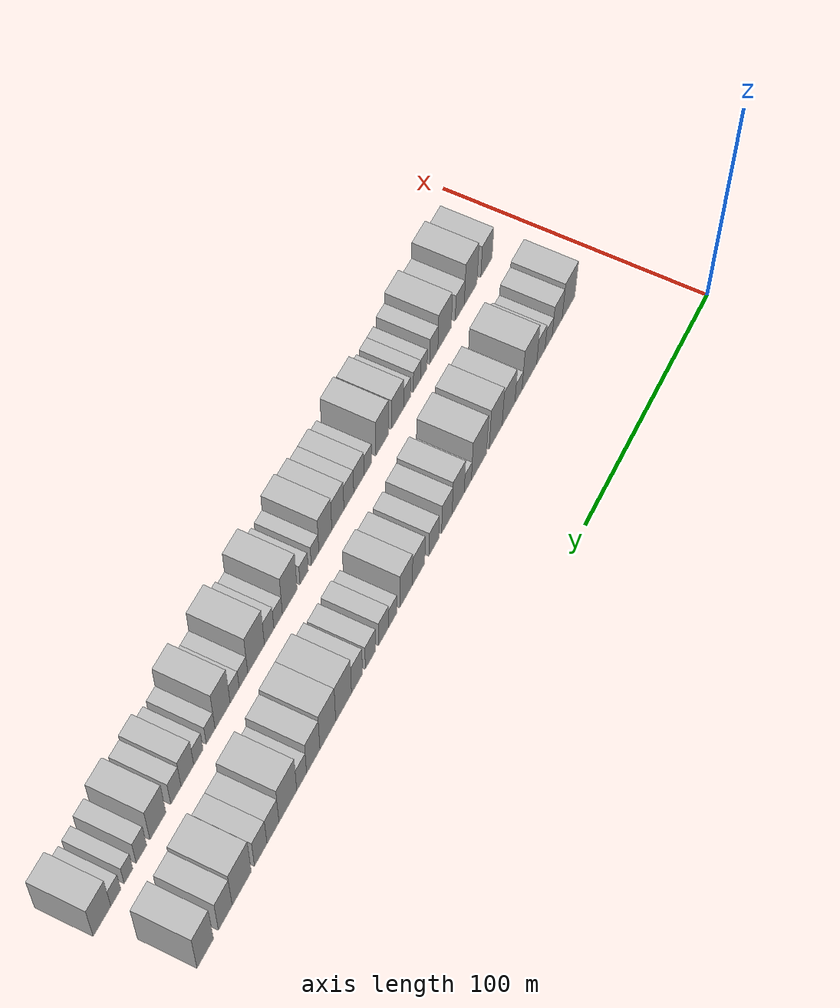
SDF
<sdf version="1.6">
 <world name="default">
  <model name="building_29">
   <static>1</static>
   <pose>50.0000 26.0660 0 0.000000 0.000000 0.000000</pose>
   <link name="link">
    <pose>0 0 10.50 0 0 0</pose>
    <collision name="collision"><geometry><box><size>20.0000 10.3743 21.0000</size></box></geometry></collision>
    <visual name="visual">
     <cast_shadows>0</cast_shadows>
     <geometry><box><size>20.0000 10.3743 21.0000</size></box></geometry>
     <material>
      <script>
       <uri>model://HANNAS_wall/materials/scripts</uri>
       <uri>model://HANNAS_wall/materials/textures</uri>
       <name>vrc/HANNAS_wall</name>
      </script>
     </material>
    </visual>
   </link>
  </model>
  <model name="building_30">
   <static>1</static>
   <pose>50.0000 35.2539 0 0.000000 0.000000 0.000000</pose>
   <link name="link">
    <pose>0 0 9.00 0 0 0</pose>
    <collision name="collision"><geometry><box><size>20.0000 8.0016 18.0000</size></box></geometry></collision>
    <visual name="visual">
     <cast_shadows>0</cast_shadows>
     <geometry><box><size>20.0000 8.0016 18.0000</size></box></geometry>
     <material>
      <script>
       <uri>model://HANNAS_wall/materials/scripts</uri>
       <uri>model://HANNAS_wall/materials/textures</uri>
       <name>vrc/HANNAS_wall</name>
      </script>
     </material>
    </visual>
   </link>
  </model>
  <model name="building_31">
   <static>1</static>
   <pose>50.0000 42.0999 0 0.000000 0.000000 0.000000</pose>
   <link name="link">
    <pose>0 0 6.00 0 0 0</pose>
    <collision name="collision"><geometry><box><size>20.0000 5.6902 12.0000</size></box></geometry></collision>
    <visual name="visual">
     <cast_shadows>0</cast_shadows>
     <geometry><box><size>20.0000 5.6902 12.0000</size></box></geometry>
     <material>
      <script>
       <uri>model://HANNAS_wall/materials/scripts</uri>
       <uri>model://HANNAS_wall/materials/textures</uri>
       <name>vrc/HANNAS_wall</name>
      </script>
     </material>
    </visual>
   </link>
  </model>
  <model name="building_32">
   <static>1</static>
   <pose>50.0000 48.2568 0 0.000000 0.000000 0.000000</pose>
   <link name="link">
    <pose>0 0 7.50 0 0 0</pose>
    <collision name="collision"><geometry><box><size>20.0000 6.6237 15.0000</size></box></geometry></collision>
    <visual name="visual">
     <cast_shadows>0</cast_shadows>
     <geometry><box><size>20.0000 6.6237 15.0000</size></box></geometry>
     <material>
      <script>
       <uri>model://HANNAS_wall/materials/scripts</uri>
       <uri>model://HANNAS_wall/materials/textures</uri>
       <name>vrc/HANNAS_wall</name>
      </script>
     </material>
    </visual>
   </link>
  </model>
  <model name="building_33">
   <static>1</static>
   <pose>50.0000 57.3167 0 0.000000 0.000000 0.000000</pose>
   <link name="link">
    <pose>0 0 12.00 0 0 0</pose>
    <collision name="collision"><geometry><box><size>20.0000 11.4961 24.0000</size></box></geometry></collision>
    <visual name="visual">
     <cast_shadows>0</cast_shadows>
     <geometry><box><size>20.0000 11.4961 24.0000</size></box></geometry>
     <material>
      <script>
       <uri>model://HANNAS_wall/materials/scripts</uri>
       <uri>model://HANNAS_wall/materials/textures</uri>
       <name>vrc/HANNAS_wall</name>
      </script>
     </material>
    </visual>
   </link>
  </model>
  <model name="building_34">
   <static>1</static>
   <pose>50.0000 65.8252 0 0.000000 0.000000 0.000000</pose>
   <link name="link">
    <pose>0 0 6.00 0 0 0</pose>
    <collision name="collision"><geometry><box><size>20.0000 5.5210 12.0000</size></box></geometry></collision>
    <visual name="visual">
     <cast_shadows>0</cast_shadows>
     <geometry><box><size>20.0000 5.5210 12.0000</size></box></geometry>
     <material>
      <script>
       <uri>model://HANNAS_wall/materials/scripts</uri>
       <uri>model://HANNAS_wall/materials/textures</uri>
       <name>vrc/HANNAS_wall</name>
      </script>
     </material>
    </visual>
   </link>
  </model>
  <model name="building_35">
   <static>1</static>
   <pose>50.0000 73.5058 0 0.000000 0.000000 0.000000</pose>
   <link name="link">
    <pose>0 0 10.50 0 0 0</pose>
    <collision name="collision"><geometry><box><size>20.0000 9.8404 21.0000</size></box></geometry></collision>
    <visual name="visual">
     <cast_shadows>0</cast_shadows>
     <geometry><box><size>20.0000 9.8404 21.0000</size></box></geometry>
     <material>
      <script>
       <uri>model://HANNAS_wall/materials/scripts</uri>
       <uri>model://HANNAS_wall/materials/textures</uri>
       <name>vrc/HANNAS_wall</name>
      </script>
     </material>
    </visual>
   </link>
  </model>
  <model name="building_36">
   <static>1</static>
   <pose>50.0000 83.3782 0 0.000000 0.000000 0.000000</pose>
   <link name="link">
    <pose>0 0 12.00 0 0 0</pose>
    <collision name="collision"><geometry><box><size>20.0000 9.9043 24.0000</size></box></geometry></collision>
    <visual name="visual">
     <cast_shadows>0</cast_shadows>
     <geometry><box><size>20.0000 9.9043 24.0000</size></box></geometry>
     <material>
      <script>
       <uri>model://HANNAS_wall/materials/scripts</uri>
       <uri>model://HANNAS_wall/materials/textures</uri>
       <name>vrc/HANNAS_wall</name>
      </script>
     </material>
    </visual>
   </link>
  </model>
  <model name="building_37">
   <static>1</static>
   <pose>50.0000 96.0265 0 0.000000 0.000000 0.000000</pose>
   <link name="link">
    <pose>0 0 12.00 0 0 0</pose>
    <collision name="collision"><geometry><box><size>20.0000 11.3923 24.0000</size></box></geometry></collision>
    <visual name="visual">
     <cast_shadows>0</cast_shadows>
     <geometry><box><size>20.0000 11.3923 24.0000</size></box></geometry>
     <material>
      <script>
       <uri>model://HANNAS_wall/materials/scripts</uri>
       <uri>model://HANNAS_wall/materials/textures</uri>
       <name>vrc/HANNAS_wall</name>
      </script>
     </material>
    </visual>
   </link>
  </model>
  <model name="building_38">
   <static>1</static>
   <pose>50.0000 104.3812 0 0.000000 0.000000 0.000000</pose>
   <link name="link">
    <pose>0 0 6.00 0 0 0</pose>
    <collision name="collision"><geometry><box><size>20.0000 5.3171 12.0000</size></box></geometry></collision>
    <visual name="visual">
     <cast_shadows>0</cast_shadows>
     <geometry><box><size>20.0000 5.3171 12.0000</size></box></geometry>
     <material>
      <script>
       <uri>model://HANNAS_wall/materials/scripts</uri>
       <uri>model://HANNAS_wall/materials/textures</uri>
       <name>vrc/HANNAS_wall</name>
      </script>
     </material>
    </visual>
   </link>
  </model>
  <model name="building_39">
   <static>1</static>
   <pose>50.0000 111.5138 0 0.000000 0.000000 0.000000</pose>
   <link name="link">
    <pose>0 0 10.50 0 0 0</pose>
    <collision name="collision"><geometry><box><size>20.0000 8.9482 21.0000</size></box></geometry></collision>
    <visual name="visual">
     <cast_shadows>0</cast_shadows>
     <geometry><box><size>20.0000 8.9482 21.0000</size></box></geometry>
     <material>
      <script>
       <uri>model://HANNAS_wall/materials/scripts</uri>
       <uri>model://HANNAS_wall/materials/textures</uri>
       <name>vrc/HANNAS_wall</name>
      </script>
     </material>
    </visual>
   </link>
  </model>
  <model name="building_40">
   <static>1</static>
   <pose>50.0000 119.8399 0 0.000000 0.000000 0.000000</pose>
   <link name="link">
    <pose>0 0 9.00 0 0 0</pose>
    <collision name="collision"><geometry><box><size>20.0000 7.7039 18.0000</size></box></geometry></collision>
    <visual name="visual">
     <cast_shadows>0</cast_shadows>
     <geometry><box><size>20.0000 7.7039 18.0000</size></box></geometry>
     <material>
      <script>
       <uri>model://HANNAS_wall/materials/scripts</uri>
       <uri>model://HANNAS_wall/materials/textures</uri>
       <name>vrc/HANNAS_wall</name>
      </script>
     </material>
    </visual>
   </link>
  </model>
  <model name="building_41">
   <static>1</static>
   <pose>50.0000 129.2516 0 0.000000 0.000000 0.000000</pose>
   <link name="link">
    <pose>0 0 7.50 0 0 0</pose>
    <collision name="collision"><geometry><box><size>20.0000 7.1196 15.0000</size></box></geometry></collision>
    <visual name="visual">
     <cast_shadows>0</cast_shadows>
     <geometry><box><size>20.0000 7.1196 15.0000</size></box></geometry>
     <material>
      <script>
       <uri>model://HANNAS_wall/materials/scripts</uri>
       <uri>model://HANNAS_wall/materials/textures</uri>
       <name>vrc/HANNAS_wall</name>
      </script>
     </material>
    </visual>
   </link>
  </model>
  <model name="building_42">
   <static>1</static>
   <pose>50.0000 140.2515 0 0.000000 0.000000 0.000000</pose>
   <link name="link">
    <pose>0 0 9.00 0 0 0</pose>
    <collision name="collision"><geometry><box><size>20.0000 8.8802 18.0000</size></box></geometry></collision>
    <visual name="visual">
     <cast_shadows>0</cast_shadows>
     <geometry><box><size>20.0000 8.8802 18.0000</size></box></geometry>
     <material>
      <script>
       <uri>model://HANNAS_wall/materials/scripts</uri>
       <uri>model://HANNAS_wall/materials/textures</uri>
       <name>vrc/HANNAS_wall</name>
      </script>
     </material>
    </visual>
   </link>
  </model>
  <model name="building_43">
   <static>1</static>
   <pose>50.0000 149.1333 0 0.000000 0.000000 0.000000</pose>
   <link name="link">
    <pose>0 0 10.50 0 0 0</pose>
    <collision name="collision"><geometry><box><size>20.0000 8.8835 21.0000</size></box></geometry></collision>
    <visual name="visual">
     <cast_shadows>0</cast_shadows>
     <geometry><box><size>20.0000 8.8835 21.0000</size></box></geometry>
     <material>
      <script>
       <uri>model://HANNAS_wall/materials/scripts</uri>
       <uri>model://HANNAS_wall/materials/textures</uri>
       <name>vrc/HANNAS_wall</name>
      </script>
     </material>
    </visual>
   </link>
  </model>
  <model name="building_44">
   <static>1</static>
   <pose>50.0000 158.5156 0 0.000000 0.000000 0.000000</pose>
   <link name="link">
    <pose>0 0 6.00 0 0 0</pose>
    <collision name="collision"><geometry><box><size>20.0000 5.8811 12.0000</size></box></geometry></collision>
    <visual name="visual">
     <cast_shadows>0</cast_shadows>
     <geometry><box><size>20.0000 5.8811 12.0000</size></box></geometry>
     <material>
      <script>
       <uri>model://HANNAS_wall/materials/scripts</uri>
       <uri>model://HANNAS_wall/materials/textures</uri>
       <name>vrc/HANNAS_wall</name>
      </script>
     </material>
    </visual>
   </link>
  </model>
  <model name="building_45">
   <static>1</static>
   <pose>50.0000 164.9301 0 0.000000 0.000000 0.000000</pose>
   <link name="link">
    <pose>0 0 7.50 0 0 0</pose>
    <collision name="collision"><geometry><box><size>20.0000 6.9479 15.0000</size></box></geometry></collision>
    <visual name="visual">
     <cast_shadows>0</cast_shadows>
     <geometry><box><size>20.0000 6.9479 15.0000</size></box></geometry>
     <material>
      <script>
       <uri>model://HANNAS_wall/materials/scripts</uri>
       <uri>model://HANNAS_wall/materials/textures</uri>
       <name>vrc/HANNAS_wall</name>
      </script>
     </material>
    </visual>
   </link>
  </model>
  <model name="building_46">
   <static>1</static>
   <pose>50.0000 173.9951 0 0.000000 0.000000 0.000000</pose>
   <link name="link">
    <pose>0 0 7.50 0 0 0</pose>
    <collision name="collision"><geometry><box><size>20.0000 7.1822 15.0000</size></box></geometry></collision>
    <visual name="visual">
     <cast_shadows>0</cast_shadows>
     <geometry><box><size>20.0000 7.1822 15.0000</size></box></geometry>
     <material>
      <script>
       <uri>model://HANNAS_wall/materials/scripts</uri>
       <uri>model://HANNAS_wall/materials/textures</uri>
       <name>vrc/HANNAS_wall</name>
      </script>
     </material>
    </visual>
   </link>
  </model>
  <model name="building_47">
   <static>1</static>
   <pose>50.0000 183.3188 0 0.000000 0.000000 0.000000</pose>
   <link name="link">
    <pose>0 0 9.00 0 0 0</pose>
    <collision name="collision"><geometry><box><size>20.0000 7.4651 18.0000</size></box></geometry></collision>
    <visual name="visual">
     <cast_shadows>0</cast_shadows>
     <geometry><box><size>20.0000 7.4651 18.0000</size></box></geometry>
     <material>
      <script>
       <uri>model://HANNAS_wall/materials/scripts</uri>
       <uri>model://HANNAS_wall/materials/textures</uri>
       <name>vrc/HANNAS_wall</name>
      </script>
     </material>
    </visual>
   </link>
  </model>
  <model name="building_48">
   <static>1</static>
   <pose>50.0000 192.3653 0 0.000000 0.000000 0.000000</pose>
   <link name="link">
    <pose>0 0 12.00 0 0 0</pose>
    <collision name="collision"><geometry><box><size>20.0000 10.6279 24.0000</size></box></geometry></collision>
    <visual name="visual">
     <cast_shadows>0</cast_shadows>
     <geometry><box><size>20.0000 10.6279 24.0000</size></box></geometry>
     <material>
      <script>
       <uri>model://HANNAS_wall/materials/scripts</uri>
       <uri>model://HANNAS_wall/materials/textures</uri>
       <name>vrc/HANNAS_wall</name>
      </script>
     </material>
    </visual>
   </link>
  </model>
  <model name="building_49">
   <static>1</static>
   <pose>50.0000 202.9292 0 0.000000 0.000000 0.000000</pose>
   <link name="link">
    <pose>0 0 12.00 0 0 0</pose>
    <collision name="collision"><geometry><box><size>20.0000 10.5000 24.0000</size></box></geometry></collision>
    <visual name="visual">
     <cast_shadows>0</cast_shadows>
     <geometry><box><size>20.0000 10.5000 24.0000</size></box></geometry>
     <material>
      <script>
       <uri>model://HANNAS_wall/materials/scripts</uri>
       <uri>model://HANNAS_wall/materials/textures</uri>
       <name>vrc/HANNAS_wall</name>
      </script>
     </material>
    </visual>
   </link>
  </model>
  <model name="building_50">
   <static>1</static>
   <pose>50.0000 212.5719 0 0.000000 0.000000 0.000000</pose>
   <link name="link">
    <pose>0 0 10.50 0 0 0</pose>
    <collision name="collision"><geometry><box><size>20.0000 8.7854 21.0000</size></box></geometry></collision>
    <visual name="visual">
     <cast_shadows>0</cast_shadows>
     <geometry><box><size>20.0000 8.7854 21.0000</size></box></geometry>
     <material>
      <script>
       <uri>model://HANNAS_wall/materials/scripts</uri>
       <uri>model://HANNAS_wall/materials/textures</uri>
       <name>vrc/HANNAS_wall</name>
      </script>
     </material>
    </visual>
   </link>
  </model>
  <model name="building_51">
   <static>1</static>
   <pose>50.0000 220.1823 0 0.000000 0.000000 0.000000</pose>
   <link name="link">
    <pose>0 0 7.50 0 0 0</pose>
    <collision name="collision"><geometry><box><size>20.0000 6.4353 15.0000</size></box></geometry></collision>
    <visual name="visual">
     <cast_shadows>0</cast_shadows>
     <geometry><box><size>20.0000 6.4353 15.0000</size></box></geometry>
     <material>
      <script>
       <uri>model://HANNAS_wall/materials/scripts</uri>
       <uri>model://HANNAS_wall/materials/textures</uri>
       <name>vrc/HANNAS_wall</name>
      </script>
     </material>
    </visual>
   </link>
  </model>
  <model name="building_52">
   <static>1</static>
   <pose>50.0000 229.1395 0 0.000000 0.000000 0.000000</pose>
   <link name="link">
    <pose>0 0 12.00 0 0 0</pose>
    <collision name="collision"><geometry><box><size>20.0000 11.4793 24.0000</size></box></geometry></collision>
    <visual name="visual">
     <cast_shadows>0</cast_shadows>
     <geometry><box><size>20.0000 11.4793 24.0000</size></box></geometry>
     <material>
      <script>
       <uri>model://HANNAS_wall/materials/scripts</uri>
       <uri>model://HANNAS_wall/materials/textures</uri>
       <name>vrc/HANNAS_wall</name>
      </script>
     </material>
    </visual>
   </link>
  </model>
  <model name="building_53">
   <static>1</static>
   <pose>50.0000 238.7204 0 0.000000 0.000000 0.000000</pose>
   <link name="link">
    <pose>0 0 9.00 0 0 0</pose>
    <collision name="collision"><geometry><box><size>20.0000 7.6825 18.0000</size></box></geometry></collision>
    <visual name="visual">
     <cast_shadows>0</cast_shadows>
     <geometry><box><size>20.0000 7.6825 18.0000</size></box></geometry>
     <material>
      <script>
       <uri>model://HANNAS_wall/materials/scripts</uri>
       <uri>model://HANNAS_wall/materials/textures</uri>
       <name>vrc/HANNAS_wall</name>
      </script>
     </material>
    </visual>
   </link>
  </model>
  <model name="building_54">
   <static>1</static>
   <pose>50.0000 246.5286 0 0.000000 0.000000 0.000000</pose>
   <link name="link">
    <pose>0 0 9.00 0 0 0</pose>
    <collision name="collision"><geometry><box><size>20.0000 7.9339 18.0000</size></box></geometry></collision>
    <visual name="visual">
     <cast_shadows>0</cast_shadows>
     <geometry><box><size>20.0000 7.9339 18.0000</size></box></geometry>
     <material>
      <script>
       <uri>model://HANNAS_wall/materials/scripts</uri>
       <uri>model://HANNAS_wall/materials/textures</uri>
       <name>vrc/HANNAS_wall</name>
      </script>
     </material>
    </visual>
   </link>
  </model>
  <model name="building_55">
   <static>1</static>
   <pose>50.0000 258.4333 0 0.000000 0.000000 0.000000</pose>
   <link name="link">
    <pose>0 0 12.00 0 0 0</pose>
    <collision name="collision"><geometry><box><size>20.0000 11.8755 24.0000</size></box></geometry></collision>
    <visual name="visual">
     <cast_shadows>0</cast_shadows>
     <geometry><box><size>20.0000 11.8755 24.0000</size></box></geometry>
     <material>
      <script>
       <uri>model://HANNAS_wall/materials/scripts</uri>
       <uri>model://HANNAS_wall/materials/textures</uri>
       <name>vrc/HANNAS_wall</name>
      </script>
     </material>
    </visual>
   </link>
  </model>
  <model name="building_56">
   <static>1</static>
   <pose>50.0000 268.6330 0 0.000000 0.000000 0.000000</pose>
   <link name="link">
    <pose>0 0 10.50 0 0 0</pose>
    <collision name="collision"><geometry><box><size>20.0000 8.5239 21.0000</size></box></geometry></collision>
    <visual name="visual">
     <cast_shadows>0</cast_shadows>
     <geometry><box><size>20.0000 8.5239 21.0000</size></box></geometry>
     <material>
      <script>
       <uri>model://HANNAS_wall/materials/scripts</uri>
       <uri>model://HANNAS_wall/materials/textures</uri>
       <name>vrc/HANNAS_wall</name>
      </script>
     </material>
    </visual>
   </link>
  </model>
  <model name="building_57">
   <static>1</static>
   <pose>50.0000 280.9054 0 0.000000 0.000000 0.000000</pose>
   <link name="link">
    <pose>0 0 12.00 0 0 0</pose>
    <collision name="collision"><geometry><box><size>20.0000 10.0207 24.0000</size></box></geometry></collision>
    <visual name="visual">
     <cast_shadows>0</cast_shadows>
     <geometry><box><size>20.0000 10.0207 24.0000</size></box></geometry>
     <material>
      <script>
       <uri>model://HANNAS_wall/materials/scripts</uri>
       <uri>model://HANNAS_wall/materials/textures</uri>
       <name>vrc/HANNAS_wall</name>
      </script>
     </material>
    </visual>
   </link>
  </model>
  <model name="building_91">
   <static>1</static>
   <pose>82.0000 23.5148 0 0.000000 0.000000 0.000000</pose>
   <link name="link">
    <pose>0 0 9.00 0 0 0</pose>
    <collision name="collision"><geometry><box><size>20.0000 8.9794 18.0000</size></box></geometry></collision>
    <visual name="visual">
     <cast_shadows>0</cast_shadows>
     <geometry><box><size>20.0000 8.9794 18.0000</size></box></geometry>
     <material>
      <script>
       <uri>model://HANNAS_wall/materials/scripts</uri>
       <uri>model://HANNAS_wall/materials/textures</uri>
       <name>vrc/HANNAS_wall</name>
      </script>
     </material>
    </visual>
   </link>
  </model>
  <model name="building_92">
   <static>1</static>
   <pose>82.0000 35.9779 0 0.000000 0.000000 0.000000</pose>
   <link name="link">
    <pose>0 0 12.00 0 0 0</pose>
    <collision name="collision"><geometry><box><size>20.0000 9.9468 24.0000</size></box></geometry></collision>
    <visual name="visual">
     <cast_shadows>0</cast_shadows>
     <geometry><box><size>20.0000 9.9468 24.0000</size></box></geometry>
     <material>
      <script>
       <uri>model://HANNAS_wall/materials/scripts</uri>
       <uri>model://HANNAS_wall/materials/textures</uri>
       <name>vrc/HANNAS_wall</name>
      </script>
     </material>
    </visual>
   </link>
  </model>
  <model name="building_93">
   <static>1</static>
   <pose>82.0000 44.4574 0 0.000000 0.000000 0.000000</pose>
   <link name="link">
    <pose>0 0 7.50 0 0 0</pose>
    <collision name="collision"><geometry><box><size>20.0000 7.0122 15.0000</size></box></geometry></collision>
    <visual name="visual">
     <cast_shadows>0</cast_shadows>
     <geometry><box><size>20.0000 7.0122 15.0000</size></box></geometry>
     <material>
      <script>
       <uri>model://HANNAS_wall/materials/scripts</uri>
       <uri>model://HANNAS_wall/materials/textures</uri>
       <name>vrc/HANNAS_wall</name>
      </script>
     </material>
    </visual>
   </link>
  </model>
  <model name="building_94">
   <static>1</static>
   <pose>82.0000 56.1017 0 0.000000 0.000000 0.000000</pose>
   <link name="link">
    <pose>0 0 10.50 0 0 0</pose>
    <collision name="collision"><geometry><box><size>20.0000 10.2764 21.0000</size></box></geometry></collision>
    <visual name="visual">
     <cast_shadows>0</cast_shadows>
     <geometry><box><size>20.0000 10.2764 21.0000</size></box></geometry>
     <material>
      <script>
       <uri>model://HANNAS_wall/materials/scripts</uri>
       <uri>model://HANNAS_wall/materials/textures</uri>
       <name>vrc/HANNAS_wall</name>
      </script>
     </material>
    </visual>
   </link>
  </model>
  <model name="building_95">
   <static>1</static>
   <pose>82.0000 64.3131 0 0.000000 0.000000 0.000000</pose>
   <link name="link">
    <pose>0 0 7.50 0 0 0</pose>
    <collision name="collision"><geometry><box><size>20.0000 6.1464 15.0000</size></box></geometry></collision>
    <visual name="visual">
     <cast_shadows>0</cast_shadows>
     <geometry><box><size>20.0000 6.1464 15.0000</size></box></geometry>
     <material>
      <script>
       <uri>model://HANNAS_wall/materials/scripts</uri>
       <uri>model://HANNAS_wall/materials/textures</uri>
       <name>vrc/HANNAS_wall</name>
      </script>
     </material>
    </visual>
   </link>
  </model>
  <model name="building_96">
   <static>1</static>
   <pose>82.0000 71.7935 0 0.000000 0.000000 0.000000</pose>
   <link name="link">
    <pose>0 0 6.00 0 0 0</pose>
    <collision name="collision"><geometry><box><size>20.0000 4.8145 12.0000</size></box></geometry></collision>
    <visual name="visual">
     <cast_shadows>0</cast_shadows>
     <geometry><box><size>20.0000 4.8145 12.0000</size></box></geometry>
     <material>
      <script>
       <uri>model://HANNAS_wall/materials/scripts</uri>
       <uri>model://HANNAS_wall/materials/textures</uri>
       <name>vrc/HANNAS_wall</name>
      </script>
     </material>
    </visual>
   </link>
  </model>
  <model name="building_97">
   <static>1</static>
   <pose>82.0000 76.9736 0 0.000000 0.000000 0.000000</pose>
   <link name="link">
    <pose>0 0 6.00 0 0 0</pose>
    <collision name="collision"><geometry><box><size>20.0000 5.5459 12.0000</size></box></geometry></collision>
    <visual name="visual">
     <cast_shadows>0</cast_shadows>
     <geometry><box><size>20.0000 5.5459 12.0000</size></box></geometry>
     <material>
      <script>
       <uri>model://HANNAS_wall/materials/scripts</uri>
       <uri>model://HANNAS_wall/materials/textures</uri>
       <name>vrc/HANNAS_wall</name>
      </script>
     </material>
    </visual>
   </link>
  </model>
  <model name="building_98">
   <static>1</static>
   <pose>82.0000 84.3334 0 0.000000 0.000000 0.000000</pose>
   <link name="link">
    <pose>0 0 6.00 0 0 0</pose>
    <collision name="collision"><geometry><box><size>20.0000 5.1737 12.0000</size></box></geometry></collision>
    <visual name="visual">
     <cast_shadows>0</cast_shadows>
     <geometry><box><size>20.0000 5.1737 12.0000</size></box></geometry>
     <material>
      <script>
       <uri>model://HANNAS_wall/materials/scripts</uri>
       <uri>model://HANNAS_wall/materials/textures</uri>
       <name>vrc/HANNAS_wall</name>
      </script>
     </material>
    </visual>
   </link>
  </model>
  <model name="building_99">
   <static>1</static>
   <pose>82.0000 91.3804 0 0.000000 0.000000 0.000000</pose>
   <link name="link">
    <pose>0 0 9.00 0 0 0</pose>
    <collision name="collision"><geometry><box><size>20.0000 8.9202 18.0000</size></box></geometry></collision>
    <visual name="visual">
     <cast_shadows>0</cast_shadows>
     <geometry><box><size>20.0000 8.9202 18.0000</size></box></geometry>
     <material>
      <script>
       <uri>model://HANNAS_wall/materials/scripts</uri>
       <uri>model://HANNAS_wall/materials/textures</uri>
       <name>vrc/HANNAS_wall</name>
      </script>
     </material>
    </visual>
   </link>
  </model>
  <model name="building_100">
   <static>1</static>
   <pose>82.0000 102.5125 0 0.000000 0.000000 0.000000</pose>
   <link name="link">
    <pose>0 0 10.50 0 0 0</pose>
    <collision name="collision"><geometry><box><size>20.0000 9.3439 21.0000</size></box></geometry></collision>
    <visual name="visual">
     <cast_shadows>0</cast_shadows>
     <geometry><box><size>20.0000 9.3439 21.0000</size></box></geometry>
     <material>
      <script>
       <uri>model://HANNAS_wall/materials/scripts</uri>
       <uri>model://HANNAS_wall/materials/textures</uri>
       <name>vrc/HANNAS_wall</name>
      </script>
     </material>
    </visual>
   </link>
  </model>
  <model name="building_101">
   <static>1</static>
   <pose>82.0000 112.9510 0 0.000000 0.000000 0.000000</pose>
   <link name="link">
    <pose>0 0 6.00 0 0 0</pose>
    <collision name="collision"><geometry><box><size>20.0000 5.5330 12.0000</size></box></geometry></collision>
    <visual name="visual">
     <cast_shadows>0</cast_shadows>
     <geometry><box><size>20.0000 5.5330 12.0000</size></box></geometry>
     <material>
      <script>
       <uri>model://HANNAS_wall/materials/scripts</uri>
       <uri>model://HANNAS_wall/materials/textures</uri>
       <name>vrc/HANNAS_wall</name>
      </script>
     </material>
    </visual>
   </link>
  </model>
  <model name="building_102">
   <static>1</static>
   <pose>82.0000 119.3802 0 0.000000 0.000000 0.000000</pose>
   <link name="link">
    <pose>0 0 7.50 0 0 0</pose>
    <collision name="collision"><geometry><box><size>20.0000 7.3254 15.0000</size></box></geometry></collision>
    <visual name="visual">
     <cast_shadows>0</cast_shadows>
     <geometry><box><size>20.0000 7.3254 15.0000</size></box></geometry>
     <material>
      <script>
       <uri>model://HANNAS_wall/materials/scripts</uri>
       <uri>model://HANNAS_wall/materials/textures</uri>
       <name>vrc/HANNAS_wall</name>
      </script>
     </material>
    </visual>
   </link>
  </model>
  <model name="building_103">
   <static>1</static>
   <pose>82.0000 126.5073 0 0.000000 0.000000 0.000000</pose>
   <link name="link">
    <pose>0 0 7.50 0 0 0</pose>
    <collision name="collision"><geometry><box><size>20.0000 6.9288 15.0000</size></box></geometry></collision>
    <visual name="visual">
     <cast_shadows>0</cast_shadows>
     <geometry><box><size>20.0000 6.9288 15.0000</size></box></geometry>
     <material>
      <script>
       <uri>model://HANNAS_wall/materials/scripts</uri>
       <uri>model://HANNAS_wall/materials/textures</uri>
       <name>vrc/HANNAS_wall</name>
      </script>
     </material>
    </visual>
   </link>
  </model>
  <model name="building_104">
   <static>1</static>
   <pose>82.0000 134.2280 0 0.000000 0.000000 0.000000</pose>
   <link name="link">
    <pose>0 0 9.00 0 0 0</pose>
    <collision name="collision"><geometry><box><size>20.0000 8.5126 18.0000</size></box></geometry></collision>
    <visual name="visual">
     <cast_shadows>0</cast_shadows>
     <geometry><box><size>20.0000 8.5126 18.0000</size></box></geometry>
     <material>
      <script>
       <uri>model://HANNAS_wall/materials/scripts</uri>
       <uri>model://HANNAS_wall/materials/textures</uri>
       <name>vrc/HANNAS_wall</name>
      </script>
     </material>
    </visual>
   </link>
  </model>
  <model name="building_105">
   <static>1</static>
   <pose>82.0000 142.9888 0 0.000000 0.000000 0.000000</pose>
   <link name="link">
    <pose>0 0 10.50 0 0 0</pose>
    <collision name="collision"><geometry><box><size>20.0000 9.0090 21.0000</size></box></geometry></collision>
    <visual name="visual">
     <cast_shadows>0</cast_shadows>
     <geometry><box><size>20.0000 9.0090 21.0000</size></box></geometry>
     <material>
      <script>
       <uri>model://HANNAS_wall/materials/scripts</uri>
       <uri>model://HANNAS_wall/materials/textures</uri>
       <name>vrc/HANNAS_wall</name>
      </script>
     </material>
    </visual>
   </link>
  </model>
  <model name="building_106">
   <static>1</static>
   <pose>82.0000 150.1340 0 0.000000 0.000000 0.000000</pose>
   <link name="link">
    <pose>0 0 6.00 0 0 0</pose>
    <collision name="collision"><geometry><box><size>20.0000 5.2813 12.0000</size></box></geometry></collision>
    <visual name="visual">
     <cast_shadows>0</cast_shadows>
     <geometry><box><size>20.0000 5.2813 12.0000</size></box></geometry>
     <material>
      <script>
       <uri>model://HANNAS_wall/materials/scripts</uri>
       <uri>model://HANNAS_wall/materials/textures</uri>
       <name>vrc/HANNAS_wall</name>
      </script>
     </material>
    </visual>
   </link>
  </model>
  <model name="building_107">
   <static>1</static>
   <pose>82.0000 157.6060 0 0.000000 0.000000 0.000000</pose>
   <link name="link">
    <pose>0 0 6.00 0 0 0</pose>
    <collision name="collision"><geometry><box><size>20.0000 5.6628 12.0000</size></box></geometry></collision>
    <visual name="visual">
     <cast_shadows>0</cast_shadows>
     <geometry><box><size>20.0000 5.6628 12.0000</size></box></geometry>
     <material>
      <script>
       <uri>model://HANNAS_wall/materials/scripts</uri>
       <uri>model://HANNAS_wall/materials/textures</uri>
       <name>vrc/HANNAS_wall</name>
      </script>
     </material>
    </visual>
   </link>
  </model>
  <model name="building_108">
   <static>1</static>
   <pose>82.0000 167.4042 0 0.000000 0.000000 0.000000</pose>
   <link name="link">
    <pose>0 0 12.00 0 0 0</pose>
    <collision name="collision"><geometry><box><size>20.0000 9.9336 24.0000</size></box></geometry></collision>
    <visual name="visual">
     <cast_shadows>0</cast_shadows>
     <geometry><box><size>20.0000 9.9336 24.0000</size></box></geometry>
     <material>
      <script>
       <uri>model://HANNAS_wall/materials/scripts</uri>
       <uri>model://HANNAS_wall/materials/textures</uri>
       <name>vrc/HANNAS_wall</name>
      </script>
     </material>
    </visual>
   </link>
  </model>
  <model name="building_109">
   <static>1</static>
   <pose>82.0000 175.2096 0 0.000000 0.000000 0.000000</pose>
   <link name="link">
    <pose>0 0 6.00 0 0 0</pose>
    <collision name="collision"><geometry><box><size>20.0000 5.6773 12.0000</size></box></geometry></collision>
    <visual name="visual">
     <cast_shadows>0</cast_shadows>
     <geometry><box><size>20.0000 5.6773 12.0000</size></box></geometry>
     <material>
      <script>
       <uri>model://HANNAS_wall/materials/scripts</uri>
       <uri>model://HANNAS_wall/materials/textures</uri>
       <name>vrc/HANNAS_wall</name>
      </script>
     </material>
    </visual>
   </link>
  </model>
  <model name="building_110">
   <static>1</static>
   <pose>82.0000 181.2034 0 0.000000 0.000000 0.000000</pose>
   <link name="link">
    <pose>0 0 7.50 0 0 0</pose>
    <collision name="collision"><geometry><box><size>20.0000 6.3104 15.0000</size></box></geometry></collision>
    <visual name="visual">
     <cast_shadows>0</cast_shadows>
     <geometry><box><size>20.0000 6.3104 15.0000</size></box></geometry>
     <material>
      <script>
       <uri>model://HANNAS_wall/materials/scripts</uri>
       <uri>model://HANNAS_wall/materials/textures</uri>
       <name>vrc/HANNAS_wall</name>
      </script>
     </material>
    </visual>
   </link>
  </model>
  <model name="building_111">
   <static>1</static>
   <pose>82.0000 189.8683 0 0.000000 0.000000 0.000000</pose>
   <link name="link">
    <pose>0 0 12.00 0 0 0</pose>
    <collision name="collision"><geometry><box><size>20.0000 11.0194 24.0000</size></box></geometry></collision>
    <visual name="visual">
     <cast_shadows>0</cast_shadows>
     <geometry><box><size>20.0000 11.0194 24.0000</size></box></geometry>
     <material>
      <script>
       <uri>model://HANNAS_wall/materials/scripts</uri>
       <uri>model://HANNAS_wall/materials/textures</uri>
       <name>vrc/HANNAS_wall</name>
      </script>
     </material>
    </visual>
   </link>
  </model>
  <model name="building_112">
   <static>1</static>
   <pose>82.0000 198.1550 0 0.000000 0.000000 0.000000</pose>
   <link name="link">
    <pose>0 0 6.00 0 0 0</pose>
    <collision name="collision"><geometry><box><size>20.0000 5.5540 12.0000</size></box></geometry></collision>
    <visual name="visual">
     <cast_shadows>0</cast_shadows>
     <geometry><box><size>20.0000 5.5540 12.0000</size></box></geometry>
     <material>
      <script>
       <uri>model://HANNAS_wall/materials/scripts</uri>
       <uri>model://HANNAS_wall/materials/textures</uri>
       <name>vrc/HANNAS_wall</name>
      </script>
     </material>
    </visual>
   </link>
  </model>
  <model name="building_113">
   <static>1</static>
   <pose>82.0000 203.8654 0 0.000000 0.000000 0.000000</pose>
   <link name="link">
    <pose>0 0 6.00 0 0 0</pose>
    <collision name="collision"><geometry><box><size>20.0000 5.8667 12.0000</size></box></geometry></collision>
    <visual name="visual">
     <cast_shadows>0</cast_shadows>
     <geometry><box><size>20.0000 5.8667 12.0000</size></box></geometry>
     <material>
      <script>
       <uri>model://HANNAS_wall/materials/scripts</uri>
       <uri>model://HANNAS_wall/materials/textures</uri>
       <name>vrc/HANNAS_wall</name>
      </script>
     </material>
    </visual>
   </link>
  </model>
  <model name="building_114">
   <static>1</static>
   <pose>82.0000 211.6650 0 0.000000 0.000000 0.000000</pose>
   <link name="link">
    <pose>0 0 12.00 0 0 0</pose>
    <collision name="collision"><geometry><box><size>20.0000 9.7326 24.0000</size></box></geometry></collision>
    <visual name="visual">
     <cast_shadows>0</cast_shadows>
     <geometry><box><size>20.0000 9.7326 24.0000</size></box></geometry>
     <material>
      <script>
       <uri>model://HANNAS_wall/materials/scripts</uri>
       <uri>model://HANNAS_wall/materials/textures</uri>
       <name>vrc/HANNAS_wall</name>
      </script>
     </material>
    </visual>
   </link>
  </model>
  <model name="building_115">
   <static>1</static>
   <pose>82.0000 219.3414 0 0.000000 0.000000 0.000000</pose>
   <link name="link">
    <pose>0 0 6.00 0 0 0</pose>
    <collision name="collision"><geometry><box><size>20.0000 5.6202 12.0000</size></box></geometry></collision>
    <visual name="visual">
     <cast_shadows>0</cast_shadows>
     <geometry><box><size>20.0000 5.6202 12.0000</size></box></geometry>
     <material>
      <script>
       <uri>model://HANNAS_wall/materials/scripts</uri>
       <uri>model://HANNAS_wall/materials/textures</uri>
       <name>vrc/HANNAS_wall</name>
      </script>
     </material>
    </visual>
   </link>
  </model>
  <model name="building_116">
   <static>1</static>
   <pose>82.0000 227.0926 0 0.000000 0.000000 0.000000</pose>
   <link name="link">
    <pose>0 0 6.00 0 0 0</pose>
    <collision name="collision"><geometry><box><size>20.0000 5.8822 12.0000</size></box></geometry></collision>
    <visual name="visual">
     <cast_shadows>0</cast_shadows>
     <geometry><box><size>20.0000 5.8822 12.0000</size></box></geometry>
     <material>
      <script>
       <uri>model://HANNAS_wall/materials/scripts</uri>
       <uri>model://HANNAS_wall/materials/textures</uri>
       <name>vrc/HANNAS_wall</name>
      </script>
     </material>
    </visual>
   </link>
  </model>
  <model name="building_117">
   <static>1</static>
   <pose>82.0000 234.0016 0 0.000000 0.000000 0.000000</pose>
   <link name="link">
    <pose>0 0 9.00 0 0 0</pose>
    <collision name="collision"><geometry><box><size>20.0000 7.9358 18.0000</size></box></geometry></collision>
    <visual name="visual">
     <cast_shadows>0</cast_shadows>
     <geometry><box><size>20.0000 7.9358 18.0000</size></box></geometry>
     <material>
      <script>
       <uri>model://HANNAS_wall/materials/scripts</uri>
       <uri>model://HANNAS_wall/materials/textures</uri>
       <name>vrc/HANNAS_wall</name>
      </script>
     </material>
    </visual>
   </link>
  </model>
  <model name="building_118">
   <static>1</static>
   <pose>82.0000 241.1765 0 0.000000 0.000000 0.000000</pose>
   <link name="link">
    <pose>0 0 7.50 0 0 0</pose>
    <collision name="collision"><geometry><box><size>20.0000 6.4140 15.0000</size></box></geometry></collision>
    <visual name="visual">
     <cast_shadows>0</cast_shadows>
     <geometry><box><size>20.0000 6.4140 15.0000</size></box></geometry>
     <material>
      <script>
       <uri>model://HANNAS_wall/materials/scripts</uri>
       <uri>model://HANNAS_wall/materials/textures</uri>
       <name>vrc/HANNAS_wall</name>
      </script>
     </material>
    </visual>
   </link>
  </model>
  <model name="building_119">
   <static>1</static>
   <pose>82.0000 252.2868 0 0.000000 0.000000 0.000000</pose>
   <link name="link">
    <pose>0 0 10.50 0 0 0</pose>
    <collision name="collision"><geometry><box><size>20.0000 9.8065 21.0000</size></box></geometry></collision>
    <visual name="visual">
     <cast_shadows>0</cast_shadows>
     <geometry><box><size>20.0000 9.8065 21.0000</size></box></geometry>
     <material>
      <script>
       <uri>model://HANNAS_wall/materials/scripts</uri>
       <uri>model://HANNAS_wall/materials/textures</uri>
       <name>vrc/HANNAS_wall</name>
      </script>
     </material>
    </visual>
   </link>
  </model>
  <model name="building_120">
   <static>1</static>
   <pose>82.0000 262.3552 0 0.000000 0.000000 0.000000</pose>
   <link name="link">
    <pose>0 0 7.50 0 0 0</pose>
    <collision name="collision"><geometry><box><size>20.0000 6.3304 15.0000</size></box></geometry></collision>
    <visual name="visual">
     <cast_shadows>0</cast_shadows>
     <geometry><box><size>20.0000 6.3304 15.0000</size></box></geometry>
     <material>
      <script>
       <uri>model://HANNAS_wall/materials/scripts</uri>
       <uri>model://HANNAS_wall/materials/textures</uri>
       <name>vrc/HANNAS_wall</name>
      </script>
     </material>
    </visual>
   </link>
  </model>
  <model name="building_121">
   <static>1</static>
   <pose>82.0000 270.1401 0 0.000000 0.000000 0.000000</pose>
   <link name="link">
    <pose>0 0 6.00 0 0 0</pose>
    <collision name="collision"><geometry><box><size>20.0000 5.2393 12.0000</size></box></geometry></collision>
    <visual name="visual">
     <cast_shadows>0</cast_shadows>
     <geometry><box><size>20.0000 5.2393 12.0000</size></box></geometry>
     <material>
      <script>
       <uri>model://HANNAS_wall/materials/scripts</uri>
       <uri>model://HANNAS_wall/materials/textures</uri>
       <name>vrc/HANNAS_wall</name>
      </script>
     </material>
    </visual>
   </link>
  </model>
  <model name="building_122">
   <static>1</static>
   <pose>82.0000 277.7323 0 0.000000 0.000000 0.000000</pose>
   <link name="link">
    <pose>0 0 6.00 0 0 0</pose>
    <collision name="collision"><geometry><box><size>20.0000 5.9450 12.0000</size></box></geometry></collision>
    <visual name="visual">
     <cast_shadows>0</cast_shadows>
     <geometry><box><size>20.0000 5.9450 12.0000</size></box></geometry>
     <material>
      <script>
       <uri>model://HANNAS_wall/materials/scripts</uri>
       <uri>model://HANNAS_wall/materials/textures</uri>
       <name>vrc/HANNAS_wall</name>
      </script>
     </material>
    </visual>
   </link>
  </model>
  <model name="building_123">
   <static>1</static>
   <pose>82.0000 285.9211 0 0.000000 0.000000 0.000000</pose>
   <link name="link">
    <pose>0 0 10.50 0 0 0</pose>
    <collision name="collision"><geometry><box><size>20.0000 10.4325 21.0000</size></box></geometry></collision>
    <visual name="visual">
     <cast_shadows>0</cast_shadows>
     <geometry><box><size>20.0000 10.4325 21.0000</size></box></geometry>
     <material>
      <script>
       <uri>model://HANNAS_wall/materials/scripts</uri>
       <uri>model://HANNAS_wall/materials/textures</uri>
       <name>vrc/HANNAS_wall</name>
      </script>
     </material>
    </visual>
   </link>
  </model>
 </world>
</sdf>
